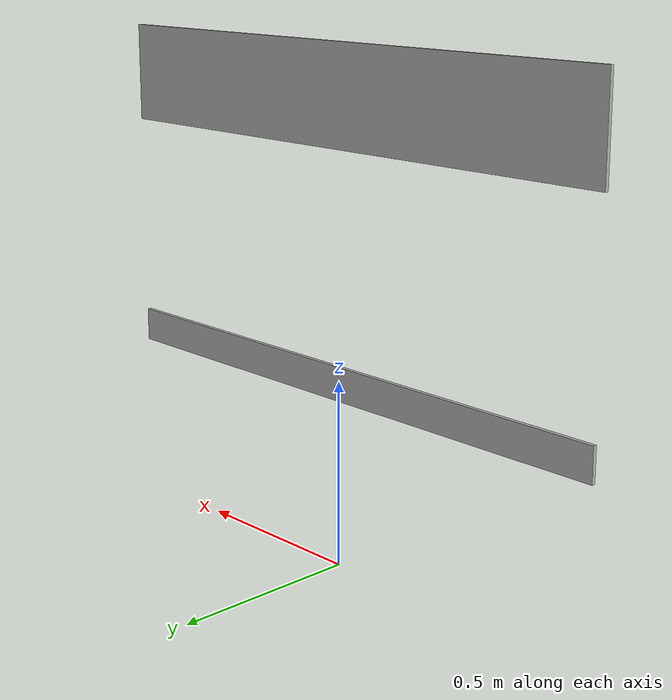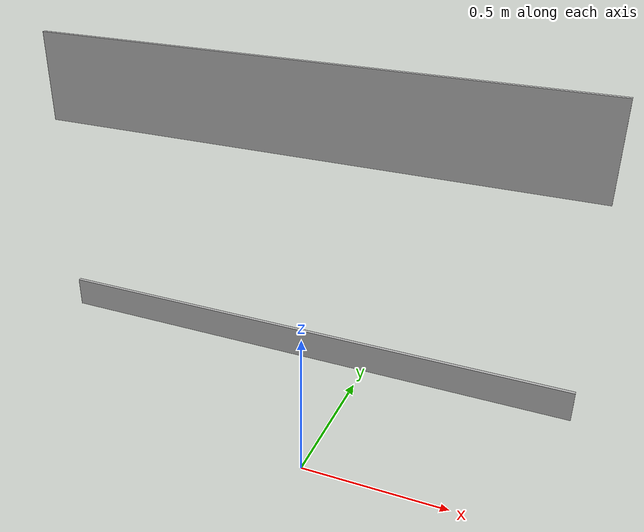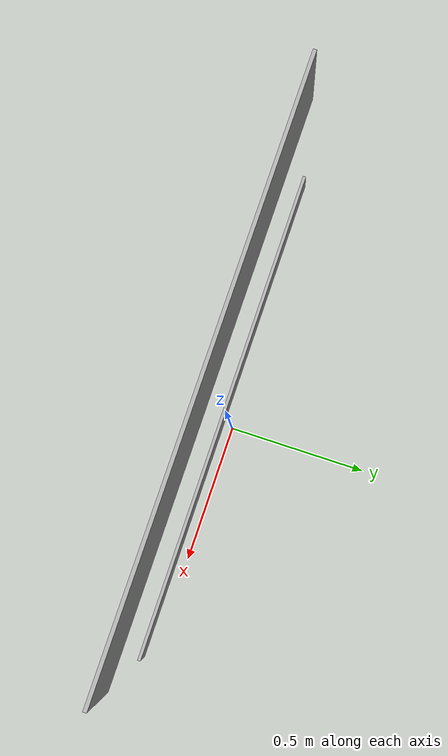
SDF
<?xml version='1.0'?>
<sdf version='1.6'>
<model name='banner-0'>
  <static>1</static>
  <link name='link'>
    <pose frame=''>0 0 0.45 0 -0 0</pose>
    <visual name='top'>
      <pose>0 0 0.77 0 -0 0</pose>
      <geometry>
        <box>
          <size>1.6 0.01 0.26</size>
        </box>
      </geometry>
      <material>
        <script>
          <uri>model://banner-0/materials/scripts</uri>
          <uri>model://banner-0/materials/textures</uri>
          <name>Banners/banner_0_top</name>
        </script>
      </material>
    </visual>
    <visual name='bottom'>
      <pose frame=''>0 0 0.045 0 -0 0</pose>
      <geometry>
        <box>
          <size>1.6 0.01 0.09</size>
        </box>
      </geometry>
      <material>
        <script>
          <uri>model://banner-0/materials/scripts</uri>
          <uri>model://banner-0/materials/textures</uri>
          <name>Banners/banner_0_bottom</name>
        </script>
      </material>
    </visual>
  </link>
</model>
</sdf>
